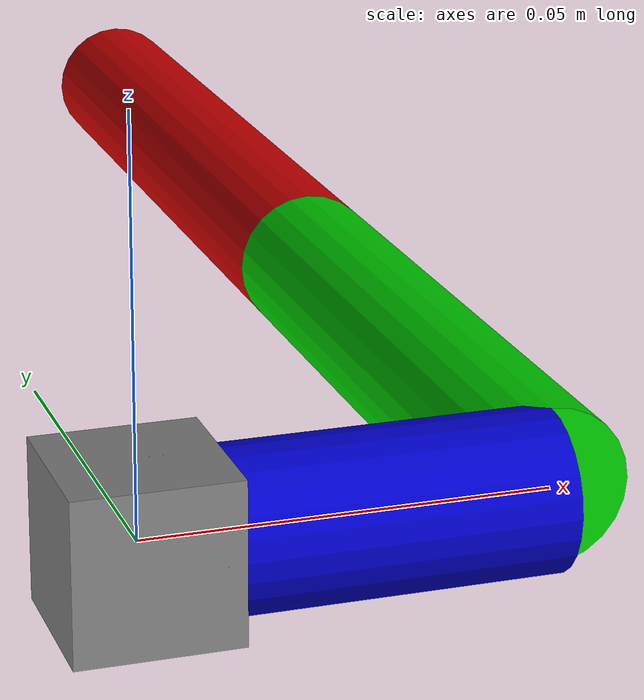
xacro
<?xml version="1.0"?>
<robot xmlns:xacro="http://www.ros.org/wiki/xacro" name="aracne_leg1">
  <xacro:include filename="materials.xacro"/>
  <xacro:include filename="leg.xacro"/>

  <xacro:arg name="leg_coxa_length" default="0.05"/>
  <xacro:arg name="leg_femur_length" default="0.09"/>
  <xacro:arg name="leg_tibia_length" default="0.11"/>
  <xacro:arg name="joint_limits_coxa_lower" default="-1.57"/>
  <xacro:arg name="joint_limits_coxa_upper" default="1.57"/>
  <xacro:arg name="joint_limits_femur_lower" default="-0.78"/>
  <xacro:arg name="joint_limits_femur_upper" default="1.57"/>
  <xacro:arg name="joint_limits_tibia_lower" default="-2.09"/>
  <xacro:arg name="joint_limits_tibia_upper" default="0.0"/>
  <xacro:arg name="controllers_file" default=""/>

    <ros2_control name="aracne_leg1_controller" type="system">
    <hardware>
      <plugin>gz_ros2_control/GazeboSimSystem</plugin>
    </hardware>
    <joint name="leg1_coxa_joint">
      <command_interface name="position"/>
      <state_interface name="position"/>
      <state_interface name="velocity"/>
    </joint>
    <joint name="leg1_femur_joint">
      <command_interface name="position"/>
      <state_interface name="position"/>
      <state_interface name="velocity"/>
    </joint>
    <joint name="leg1_tibia_joint">
      <command_interface name="position"/>
      <state_interface name="position"/>
      <state_interface name="velocity"/>
    </joint>
  </ros2_control>

    <xacro:leg
    leg_prefix="leg1"
    leg_coxa_length="$(arg leg_coxa_length)"
    leg_femur_length="$(arg leg_femur_length)"
    leg_tibia_length="$(arg leg_tibia_length)"
    joint_limits_coxa_lower="$(arg joint_limits_coxa_lower)"
    joint_limits_coxa_upper="$(arg joint_limits_coxa_upper)"
    joint_limits_femur_lower="$(arg joint_limits_femur_lower)"
    joint_limits_femur_upper="$(arg joint_limits_femur_upper)"
    joint_limits_tibia_lower="$(arg joint_limits_tibia_lower)"
    joint_limits_tibia_upper="$(arg joint_limits_tibia_upper)"
  />

      <gazebo>
    <plugin
      filename="libgz_ros2_control-system.so"
      name="gz_ros2_control::GazeboSimROS2ControlPlugin">
      <parameters>$(arg controllers_file)</parameters>
    </plugin>
  </gazebo>
</robot>

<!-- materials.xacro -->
<robot xmlns:xacro="http://www.ros.org/wiki/xacro">
  <material name="Grey">
    <color rgba="0.5 0.5 0.5 1.0"/>
  </material>
  <material name="Blue">
    <color rgba="0.0 0.0 0.8 1.0"/>
  </material>
  <material name="Green">
    <color rgba="0.0 0.8 0.0 1.0"/>
  </material>
  <material name="Red">
    <color rgba="0.8 0.0 0.0 1.0"/>
  </material>
</robot>

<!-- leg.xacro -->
<robot xmlns:xacro="http://www.ros.org/wiki/xacro">
  <xacro:macro name="leg" params="leg_prefix leg_coxa_length leg_femur_length leg_tibia_length joint_limits_coxa_lower joint_limits_coxa_upper joint_limits_femur_lower joint_limits_femur_upper joint_limits_tibia_lower joint_limits_tibia_upper">
  <xacro:property name="coxa_length" value="${leg_coxa_length}"/>
  <xacro:property name="femur_length" value="${leg_femur_length}"/>
  <xacro:property name="tibia_length" value="${leg_tibia_length}"/>

  <link name="${leg_prefix}_base_link">
    <inertial>
      <mass value="0.1"/>
      <origin xyz="0 0 0" rpy="0 0 0"/>
      <inertia ixx="0.0001" ixy="0.0" ixz="0.0" iyy="0.0001" iyz="0.0" izz="0.0001"/>
    </inertial>
    <visual>
      <geometry>
        <box size="0.02 0.02 0.02"/>
      </geometry>
      <material name="Grey"/>
    </visual>
    <collision>
      <geometry>
        <box size="0.02 0.02 0.02"/>
      </geometry>
    </collision>
  </link>

  <link name="${leg_prefix}_coxa_link">
    <inertial>
      <mass value="0.05"/>
      <origin xyz="${coxa_length/2} 0 0" rpy="0 0 0"/>
      <inertia ixx="0.00005" ixy="0.0" ixz="0.0" iyy="0.00005" iyz="0.0" izz="0.00002"/>
    </inertial>
    <visual>
      <origin xyz="${coxa_length/2} 0 0" rpy="0 1.5708 0"/>
      <geometry>
        <cylinder length="${coxa_length}" radius="0.01"/>
      </geometry>
      <material name="Blue"/>
    </visual>
    <collision>
      <origin xyz="${coxa_length/2} 0 0" rpy="0 1.5708 0"/>
      <geometry>
        <cylinder length="${coxa_length}" radius="0.01"/>
      </geometry>
    </collision>
  </link>

  <joint name="${leg_prefix}_coxa_joint" type="revolute">
    <parent link="${leg_prefix}_base_link"/>
    <child link="${leg_prefix}_coxa_link"/>
    <origin xyz="0 0 0" rpy="0 0 0"/>
    <axis xyz="0 0 1"/>
    <limit lower="${joint_limits_coxa_lower}" upper="${joint_limits_coxa_upper}" effort="10" velocity="1.0"/>
  </joint>

  <link name="${leg_prefix}_femur_link">
    <inertial>
      <mass value="0.05"/>
      <origin xyz="0 ${femur_length/2} 0" rpy="0 0 0"/>
      <inertia ixx="0.00005" ixy="0.0" ixz="0.0" iyy="0.00005" iyz="0.0" izz="0.00002"/>
    </inertial>
    <visual>
      <origin xyz="0 ${femur_length/2} 0" rpy="1.5708 0 0"/>
      <geometry>
        <cylinder length="${femur_length}" radius="0.01"/>
      </geometry>
      <material name="Green"/>
    </visual>
    <collision>
      <origin xyz="0 ${femur_length/2} 0" rpy="1.5708 0 0"/>
      <geometry>
        <cylinder length="${femur_length}" radius="0.01"/>
      </geometry>
    </collision>
  </link>

  <joint name="${leg_prefix}_femur_joint" type="revolute">
    <parent link="${leg_prefix}_coxa_link"/>
    <child link="${leg_prefix}_femur_link"/>
    <origin xyz="${coxa_length} 0 0" rpy="0 0 0"/>
    <axis xyz="0 1 0"/>
    <limit lower="${joint_limits_femur_lower}" upper="${joint_limits_femur_upper}" effort="10" velocity="1.0"/>
  </joint>

  <link name="${leg_prefix}_tibia_link">
    <inertial>
      <mass value="0.05"/>
      <origin xyz="0 ${tibia_length/2} 0" rpy="0 0 0"/>
      <inertia ixx="0.00005" ixy="0.0" ixz="0.0" iyy="0.00005" iyz="0.0" izz="0.00002"/>
    </inertial>
    <visual>
      <origin xyz="0 ${tibia_length/2} 0" rpy="1.5708 0 0"/>
      <geometry>
        <cylinder length="${tibia_length}" radius="0.01"/>
      </geometry>
      <material name="Red"/>
    </visual>
    <collision>
      <origin xyz="0 ${tibia_length/2} 0" rpy="1.5708 0 0"/>
      <geometry>
        <cylinder length="${tibia_length}" radius="0.01"/>
      </geometry>
    </collision>
  </link>

  <joint name="${leg_prefix}_tibia_joint" type="revolute">
    <parent link="${leg_prefix}_femur_link"/>
    <child link="${leg_prefix}_tibia_link"/>
    <origin xyz="0 ${femur_length} 0" rpy="0 0 0"/>
    <axis xyz="0 1 0"/>
    <limit lower="${joint_limits_tibia_lower}" upper="${joint_limits_tibia_upper}" effort="10" velocity="1.0"/>
    </joint>
</xacro:macro>
</robot>
